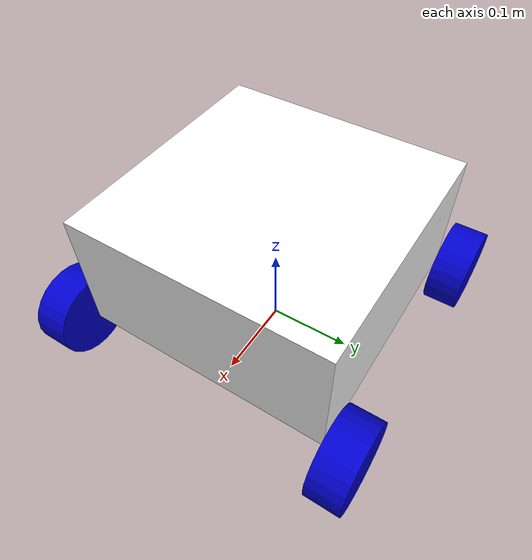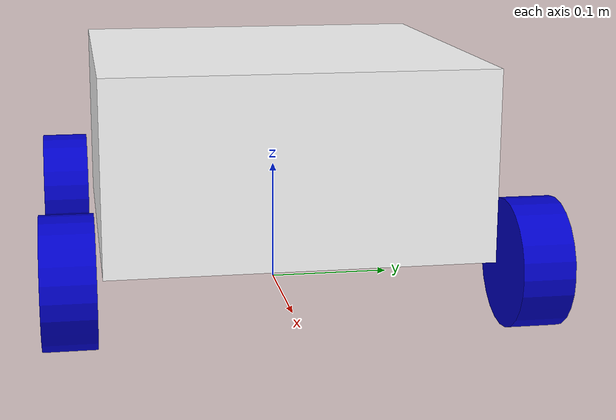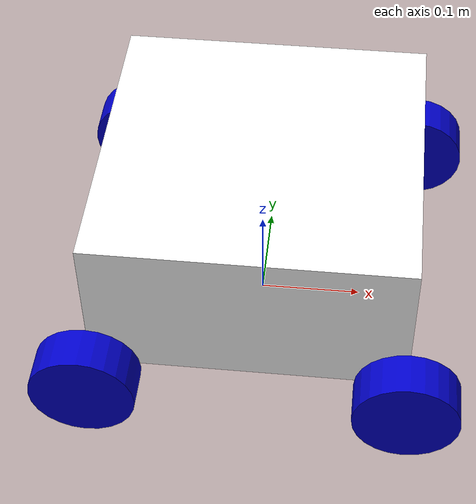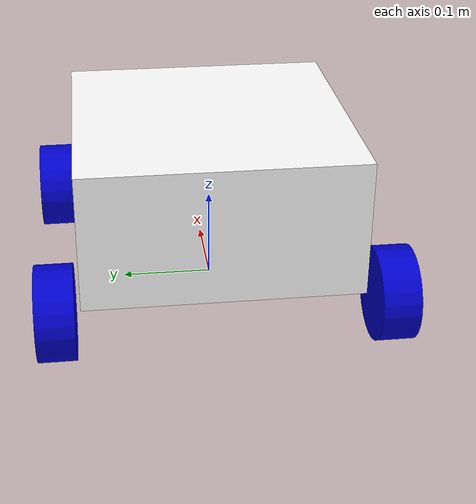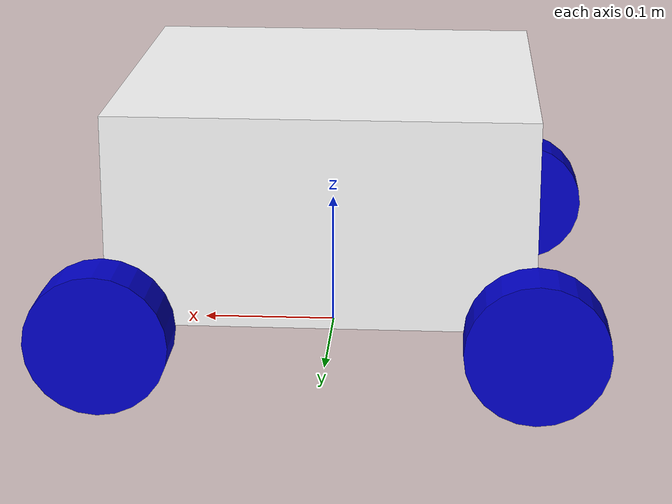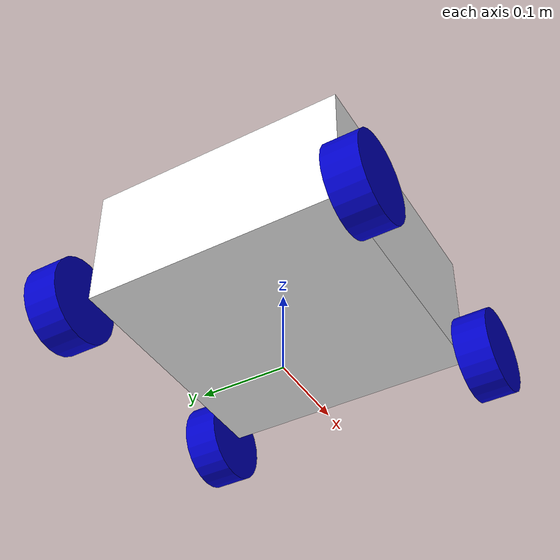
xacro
<?xml version="1.0"?>
<robot xmlns:xacro="http://www.ros.org/wiki/xacro" name="nav_stack">

    <!-- Common -->
    <xacro:include filename="materials.xacro"/>
    <xacro:include filename="inertial_macros.xacro"/>

    <!-- Robot structure -->
    <xacro:include filename="base_frames.xacro"/>
    <xacro:include filename="chassis.xacro"/>
    <xacro:include filename="steering.xacro"/>
    <xacro:include filename="wheels.xacro"/>

    <!-- Control -->
    <xacro:include filename="ros2_control.xacro"/>
    <xacro:include filename="gazebo_control.xacro"/>
</robot>

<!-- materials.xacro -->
<robot xmlns:xacro="http://www.ros.org/wiki/xacro">

<material name="black">
  <color rgba="0.0 0.0 0.0 1.0"/>
</material>

<material name="blue">
  <color rgba="0.0 0.0 0.8 1.0"/>
</material>

<material name="green">
  <color rgba="0.0 0.8 0.0 1.0"/>
</material>

<material name="grey">
  <color rgba="0.2 0.2 0.2 1.0"/>
</material>

<material name="orange">
  <color rgba="${255/255} ${108/255} ${10/255} 1.0"/>
</material>

<material name="brown">
  <color rgba="${222/255} ${207/255} ${195/255} 1.0"/>
</material>

<material name="red">
  <color rgba="0.8 0.0 0.0 1.0"/>
</material>

<material name="white">
  <color rgba="1.0 1.0 1.0 1.0"/>
</material>

</robot>

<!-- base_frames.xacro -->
<robot xmlns:xacro="http://www.ros.org/wiki/xacro">

    <link name="base_footprint"/>

    <joint name="base_footprint_to_base_link" type="fixed">
        <parent link="base_footprint"/>
        <child link="base_link"/>
        <origin xyz="0 0 0.05"/>
    </joint>

    <link name="base_link"/>

</robot>

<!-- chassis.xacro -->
<robot xmlns:xacro="http://www.ros.org/wiki/xacro">

    <joint name="chassis_joint" type="fixed">
        <parent link="base_link"/>
        <child link="chassis"/>
        <origin xyz="0 0 0"/>
    </joint>

    <link name="chassis">
        <visual>
            <origin xyz="0 0 0.075"/>
            <geometry>
                <box size="0.3 0.3 0.15"/>
            </geometry>
            <material name="white"/>
        </visual>

        <collision>
            <origin xyz="0 0 0.075"/>
            <geometry>
                <box size="0.3 0.3 0.15"/>
            </geometry>
        </collision>

        <xacro:inertial_box mass="0.5" x="0.3" y="0.3" z="0.15">
            <origin xyz="0 0 0.075"/>
        </xacro:inertial_box>
    </link>

</robot>

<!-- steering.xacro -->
<robot xmlns:xacro="http://www.ros.org/wiki/xacro">

    <joint name="front_left_steering_joint" type="revolute">
        <parent link="base_link"/>
        <child link="front_left_steering_link"/>
        <origin xyz="0.15 0.175 0"/>
        <axis xyz="0 0 1"/>
        <limit lower="-0.5236" upper="0.5236" effort="10" velocity="1.0"/>
    </joint>

    <link name="front_left_steering_link"/>

    <joint name="front_right_steering_joint" type="revolute">
        <parent link="base_link"/>
        <child link="front_right_steering_link"/>
        <origin xyz="0.15 -0.175 0"/>
        <axis xyz="0 0 1"/>
        <limit lower="-0.5236" upper="0.5236" effort="10" velocity="1.0"/>
    </joint>

    <link name="front_right_steering_link"/>

</robot>

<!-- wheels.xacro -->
<robot xmlns:xacro="http://www.ros.org/wiki/xacro">

    <!-- =========================================================
         Local includes (each file must be self-contained)
         ========================================================= -->
    <xacro:include filename="inertial_macros.xacro"/>

    <!-- =========================================================
         Constants (avoid cross-file dependencies)
         ========================================================= -->
    <!-- -90 degrees in radians -->
    <xacro:property name="wheel_rpy_x" value="-1.57079632679"/>

    <!-- =========================================================
         FRONT WHEELS (fixed to steering links)
         ========================================================= -->

    <!-- Front Left Wheel -->
    <joint name="front_left_wheel_joint" type="fixed">
        <parent link="front_left_steering_link"/>
        <child link="front_left_wheel"/>
        <origin xyz="0 0 0" rpy="${wheel_rpy_x} 0 0"/>
    </joint>

    <link name="front_left_wheel">
        <visual>
            <geometry>
                <cylinder radius="0.05" length="0.04"/>
            </geometry>
            <material name="blue"/>
        </visual>
        <collision>
            <geometry>
                <cylinder radius="0.05" length="0.04"/>
            </geometry>
        </collision>
        <xacro:inertial_cylinder mass="0.1" radius="0.05" length="0.04">
            <origin xyz="0 0 0" rpy="0 0 0"/>
        </xacro:inertial_cylinder>
    </link>

    <!-- Front Right Wheel -->
    <joint name="front_right_wheel_joint" type="fixed">
        <parent link="front_right_steering_link"/>
        <child link="front_right_wheel"/>
        <origin xyz="0 0 0" rpy="${wheel_rpy_x} 0 0"/>
    </joint>

    <link name="front_right_wheel">
        <visual>
            <geometry>
                <cylinder radius="0.05" length="0.04"/>
            </geometry>
            <material name="blue"/>
        </visual>
        <collision>
            <geometry>
                <cylinder radius="0.05" length="0.04"/>
            </geometry>
        </collision>
        <xacro:inertial_cylinder mass="0.1" radius="0.05" length="0.04">
            <origin xyz="0 0 0" rpy="0 0 0"/>
        </xacro:inertial_cylinder>
    </link>

    <!-- =========================================================
         REAR WHEELS (driven, continuous joints)
         ========================================================= -->

    <!-- Rear Left Wheel -->
    <joint name="rear_left_wheel_joint" type="continuous">
        <parent link="base_link"/>
        <child link="rear_left_wheel"/>
        <origin xyz="-0.15 0.175 0" rpy="${wheel_rpy_x} 0 0"/>
        <axis xyz="0 0 1"/>
    </joint>

    <link name="rear_left_wheel">
        <visual>
            <geometry>
                <cylinder radius="0.05" length="0.04"/>
            </geometry>
            <material name="blue"/>
        </visual>
        <collision>
            <geometry>
                <cylinder radius="0.05" length="0.04"/>
            </geometry>
        </collision>
        <xacro:inertial_cylinder mass="0.1" radius="0.05" length="0.04">
            <origin xyz="0 0 0" rpy="0 0 0"/>
        </xacro:inertial_cylinder>
    </link>

    <!-- Rear Right Wheel -->
    <joint name="rear_right_wheel_joint" type="continuous">
        <parent link="base_link"/>
        <child link="rear_right_wheel"/>
        <origin xyz="-0.15 -0.175 0" rpy="${wheel_rpy_x} 0 0"/>
        <axis xyz="0 0 1"/>
    </joint>

    <link name="rear_right_wheel">
        <visual>
            <geometry>
                <cylinder radius="0.05" length="0.04"/>
            </geometry>
            <material name="blue"/>
        </visual>
        <collision>
            <geometry>
                <cylinder radius="0.05" length="0.04"/>
            </geometry>
        </collision>
        <xacro:inertial_cylinder mass="0.1" radius="0.05" length="0.04">
            <origin xyz="0 0 0" rpy="0 0 0"/>
        </xacro:inertial_cylinder>
    </link>

</robot>
